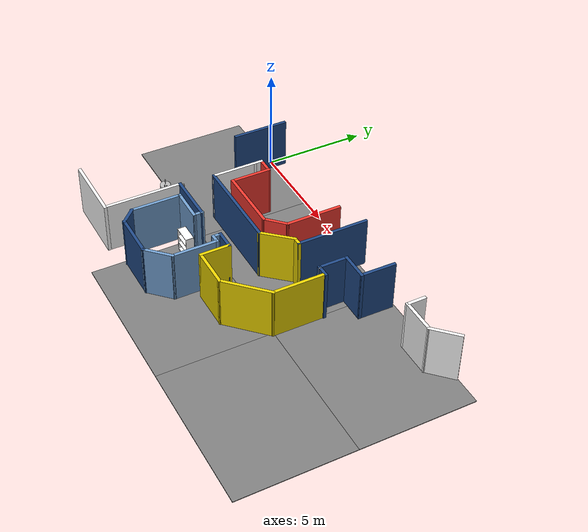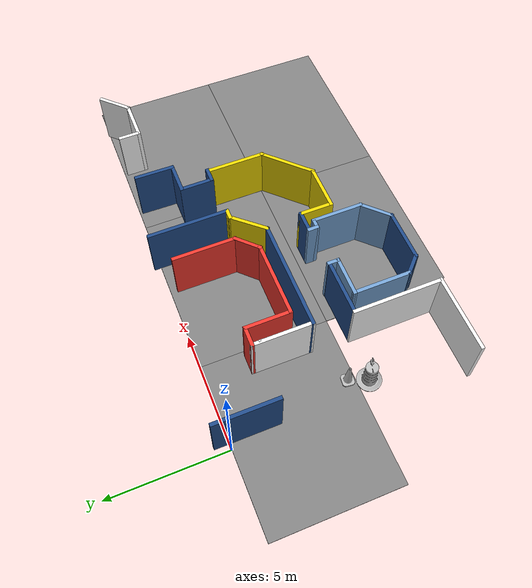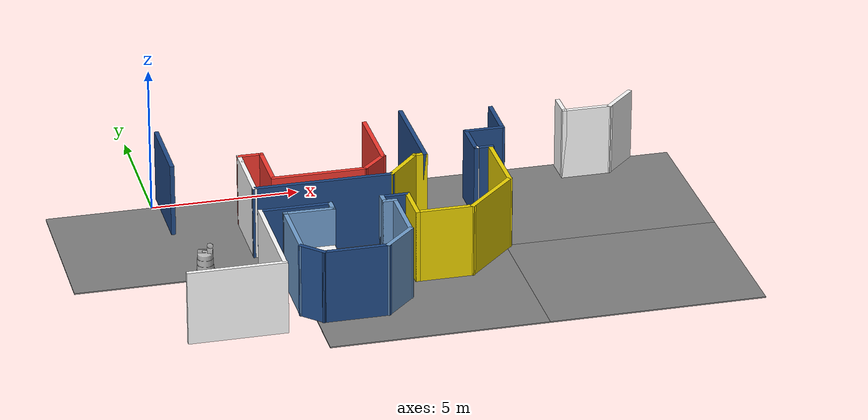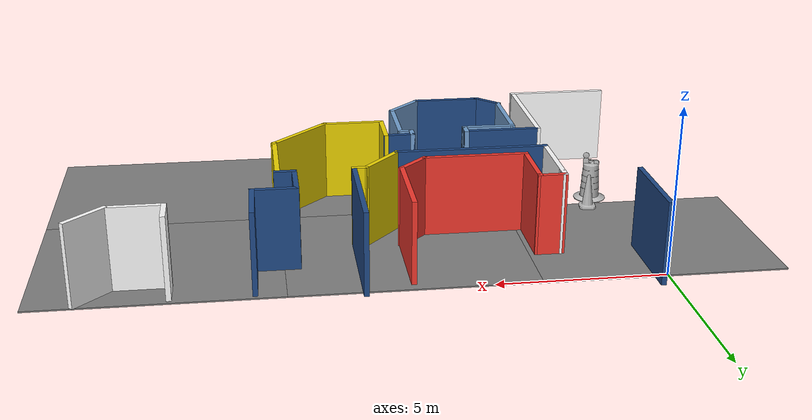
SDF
<sdf version="1.7">
 <world name="default">
  <model name="among_us_world">
   <pose>0.133216 -0.12311 0 0 -0 0</pose>
   <link name="Wall_116">
    <collision name="Wall_116_Collision">
     <geometry><box><size>2.75 0.15 2.5</size></box></geometry>
     <pose>0 0 1.25 0 -0 0</pose>
    </collision>
    <visual name="Wall_116_Visual">
     <pose>0 0 1.25 0 -0 0</pose>
     <geometry><box><size>2.75 0.15 2.5</size></box></geometry>
     <material>
      <ambient>0.12549 0.290196 0.529412 1</ambient>
      <diffuse>0.12549 0.290196 0.529412 1</diffuse>
      <specular>0.08 0.08 0.08 1</specular>
      <emissive>0 0 0 1</emissive>
      <pbr>
       <metal>
        <albedo_map>model://asphalt_plane/materials/textures/tarmac.png</albedo_map>
        <roughness>0.85</roughness>
        <metalness>0</metalness>
       </metal>
      </pbr>
     </material>
     <meta><layer>0</layer></meta>
    </visual>
    <pose>0.19261 -0.637844 0 0 -0 -1.5708</pose>
   </link>
   <link name="Wall_135">
    <collision name="Wall_135_Collision">
     <geometry><box><size>3.5 0.15 2.5</size></box></geometry>
     <pose>0 0 1.25 0 -0 0</pose>
    </collision>
    <visual name="Wall_135_Visual">
     <pose>0 0 1.25 0 -0 0</pose>
     <geometry><box><size>3.5 0.15 2.5</size></box></geometry>
     <material>
      <ambient>0.12549 0.290196 0.529412 1</ambient>
      <diffuse>0.12549 0.290196 0.529412 1</diffuse>
      <specular>0.08 0.08 0.08 1</specular>
      <emissive>0 0 0 1</emissive>
      <pbr>
       <metal>
        <albedo_map>model://asphalt_plane/materials/textures/tarmac.png</albedo_map>
        <roughness>0.85</roughness>
        <metalness>0</metalness>
       </metal>
      </pbr>
     </material>
     <meta><layer>0</layer></meta>
    </visual>
    <pose>8.5057 -1.34265 0 0 -0 -1.5708</pose>
   </link>
   <link name="Wall_136">
    <collision name="Wall_136_Collision">
     <geometry><box><size>0.5 0.15 2.5</size></box></geometry>
     <pose>0 0 1.25 0 -0 0</pose>
    </collision>
    <visual name="Wall_136_Visual">
     <pose>0 0 1.25 0 -0 0</pose>
     <geometry><box><size>0.5 0.15 2.5</size></box></geometry>
     <material>
      <ambient>0.929412 0.831373 0 1</ambient>
      <diffuse>0.929412 0.831373 0 1</diffuse>
      <specular>0.08 0.08 0.08 1</specular>
      <emissive>0 0 0 1</emissive>
      <pbr>
       <metal>
        <albedo_map>model://among_us_world/materials/textures/ceiling_tiled_237_212_0.jpg</albedo_map>
        <roughness>0.85</roughness>
        <metalness>0</metalness>
       </metal>
      </pbr>
     </material>
     <meta><layer>0</layer></meta>
    </visual>
    <pose>8.3307 -3.01765 0 0 -0 3.14159</pose>
   </link>
   <link name="Wall_141">
    <collision name="Wall_141_Collision">
     <geometry><box><size>4.75 0.15 2.5</size></box></geometry>
     <pose>0 0 1.25 0 -0 0</pose>
    </collision>
    <visual name="Wall_141_Visual">
     <pose>0 0 1.25 0 -0 0</pose>
     <geometry><box><size>4.75 0.15 2.5</size></box></geometry>
     <material>
      <ambient>0.12549 0.290196 0.529412 1</ambient>
      <diffuse>0.12549 0.290196 0.529412 1</diffuse>
      <specular>0.08 0.08 0.08 1</specular>
      <emissive>0 0 0 1</emissive>
      <pbr>
       <metal>
        <albedo_map>model://asphalt_plane/materials/textures/tarmac.png</albedo_map>
        <roughness>0.85</roughness>
        <metalness>0</metalness>
       </metal>
      </pbr>
     </material>
     <meta><layer>0</layer></meta>
    </visual>
    <pose>4.78856 -4.21327 0 0 -0 0</pose>
   </link>
   <link name="Wall_143">
    <collision name="Wall_143_Collision">
     <geometry><box><size>1.75259 0.15 2.5</size></box></geometry>
     <pose>0 0 1.25 0 -0 0</pose>
    </collision>
    <visual name="Wall_143_Visual">
     <pose>0 0 1.25 0 -0 0</pose>
     <geometry><box><size>1.75259 0.15 2.5</size></box></geometry>
     <material>
      <ambient>0.929412 0.831373 0 1</ambient>
      <diffuse>0.929412 0.831373 0 1</diffuse>
      <specular>0.08 0.08 0.08 1</specular>
      <emissive>0 0 0 1</emissive>
      <pbr>
       <metal>
        <albedo_map>model://among_us_world/materials/textures/ceiling_tiled_237_212_0.jpg</albedo_map>
        <roughness>0.85</roughness>
        <metalness>0</metalness>
       </metal>
      </pbr>
     </material>
     <meta><layer>0</layer></meta>
    </visual>
    <pose>7.62213 -3.61546 0 0 -0 -2.29947</pose>
   </link>
   <link name="Wall_189">
    <collision name="Wall_189_Collision">
     <geometry><box><size>0.892418 0.15 2.5</size></box></geometry>
     <pose>0 0 1.25 0 -0 0</pose>
    </collision>
    <visual name="Wall_189_Visual">
     <pose>0 0 1.25 0 -0 0</pose>
     <geometry><box><size>0.892418 0.15 2.5</size></box></geometry>
     <material>
      <ambient>0.95 0.22 0.18 1</ambient>
      <diffuse>0.95 0.22 0.18 1</diffuse>
      <specular>0.08 0.08 0.08 1</specular>
      <emissive>0 0 0 1</emissive>
      <pbr>
       <metal>
        <albedo_map>model://among_us_world/materials/textures/ceiling_tiled_164_0_0.jpg</albedo_map>
        <roughness>0.85</roughness>
        <metalness>0</metalness>
       </metal>
      </pbr>
     </material>
     <meta><layer>0</layer></meta>
    </visual>
    <pose>2.86737 -1.75991 0 0 -0 -0.009059</pose>
   </link>
   <link name="Wall_190">
    <collision name="Wall_190_Collision">
     <geometry><box><size>2 0.15 2.5</size></box></geometry>
     <pose>0 0 1.25 0 -0 0</pose>
    </collision>
    <visual name="Wall_190_Visual">
     <pose>0 0 1.25 0 -0 0</pose>
     <geometry><box><size>2 0.15 2.5</size></box></geometry>
     <material>
      <ambient>0.95 0.22 0.18 1</ambient>
      <diffuse>0.95 0.22 0.18 1</diffuse>
      <specular>0.08 0.08 0.08 1</specular>
      <emissive>0 0 0 1</emissive>
      <pbr>
       <metal>
        <albedo_map>model://among_us_world/materials/textures/ceiling_tiled_164_0_0.jpg</albedo_map>
        <roughness>0.85</roughness>
        <metalness>0</metalness>
       </metal>
      </pbr>
     </material>
     <meta><layer>0</layer></meta>
    </visual>
    <pose>3.23856 -2.68827 0 0 -0 -1.5708</pose>
   </link>
   <link name="Wall_191">
    <collision name="Wall_191_Collision">
     <geometry><box><size>3.25 0.15 2.5</size></box></geometry>
     <pose>0 0 1.25 0 -0 0</pose>
    </collision>
    <visual name="Wall_191_Visual">
     <pose>0 0 1.25 0 -0 0</pose>
     <geometry><box><size>3.25 0.15 2.5</size></box></geometry>
     <material>
      <ambient>0.95 0.22 0.18 1</ambient>
      <diffuse>0.95 0.22 0.18 1</diffuse>
      <specular>0.08 0.08 0.08 1</specular>
      <emissive>0 0 0 1</emissive>
      <pbr>
       <metal>
        <albedo_map>model://among_us_world/materials/textures/ceiling_tiled_164_0_0.jpg</albedo_map>
        <roughness>0.85</roughness>
        <metalness>0</metalness>
       </metal>
      </pbr>
     </material>
     <meta><layer>0</layer></meta>
    </visual>
    <pose>4.78856 -3.61327 0 0 -0 0</pose>
   </link>
   <link name="Wall_192">
    <collision name="Wall_192_Collision">
     <geometry><box><size>1.25 0.15 2.5</size></box></geometry>
     <pose>0 0 1.25 0 -0 0</pose>
    </collision>
    <visual name="Wall_192_Visual">
     <pose>0 0 1.25 0 -0 0</pose>
     <geometry><box><size>1.25 0.15 2.5</size></box></geometry>
     <material>
      <ambient>0.95 0.22 0.18 1</ambient>
      <diffuse>0.95 0.22 0.18 1</diffuse>
      <specular>0.08 0.08 0.08 1</specular>
      <emissive>0 0 0 1</emissive>
      <pbr>
       <metal>
        <albedo_map>model://among_us_world/materials/textures/ceiling_tiled_164_0_0.jpg</albedo_map>
        <roughness>0.85</roughness>
        <metalness>0</metalness>
       </metal>
      </pbr>
     </material>
     <meta><layer>0</layer></meta>
    </visual>
    <pose>6.72747 -3.22436 0 0 -0 0.785398</pose>
   </link>
   <link name="Wall_193">
    <collision name="Wall_193_Collision">
     <geometry><box><size>2.75 0.15 2.5</size></box></geometry>
     <pose>0 0 1.25 0 -0 0</pose>
    </collision>
    <visual name="Wall_193_Visual">
     <pose>0 0 1.25 0 -0 0</pose>
     <geometry><box><size>2.75 0.15 2.5</size></box></geometry>
     <material>
      <ambient>0.95 0.22 0.18 1</ambient>
      <diffuse>0.95 0.22 0.18 1</diffuse>
      <specular>0.08 0.08 0.08 1</specular>
      <emissive>0 0 0 1</emissive>
      <pbr>
       <metal>
        <albedo_map>model://among_us_world/materials/textures/ceiling_tiled_164_0_0.jpg</albedo_map>
        <roughness>0.85</roughness>
        <metalness>0</metalness>
       </metal>
      </pbr>
     </material>
     <meta><layer>0</layer></meta>
    </visual>
    <pose>7.11638 -1.53545 0 0 -0 1.5708</pose>
   </link>
   <link name="Wall_200">
    <collision name="Wall_200_Collision">
     <geometry><box><size>3.75 0.15 2.5</size></box></geometry>
     <pose>0 0 1.25 0 -0 0</pose>
    </collision>
    <visual name="Wall_200_Visual">
     <pose>0 0 1.25 0 -0 0</pose>
     <geometry><box><size>3.75 0.15 2.5</size></box></geometry>
     <material>
      <ambient>1 1 1 1</ambient>
      <diffuse>1 1 1 1</diffuse>
      <specular>0.08 0.08 0.08 1</specular>
      <emissive>0 0 0 1</emissive>
      <pbr>
       <metal>
        <albedo_map>model://among_us_world/materials/textures/ceiling_tiled_85_87_83.jpg</albedo_map>
        <roughness>0.85</roughness>
        <metalness>0</metalness>
       </metal>
      </pbr>
     </material>
     <meta><layer>0</layer></meta>
    </visual>
    <pose>2.32919 -7.66138 0 0 -0 1.5708</pose>
   </link>
   <link name="Wall_202">
    <collision name="Wall_202_Collision">
     <geometry><box><size>3.25 0.15 2.5</size></box></geometry>
     <pose>0 0 1.25 0 -0 0</pose>
    </collision>
    <visual name="Wall_202_Visual">
     <pose>0 0 1.25 0 -0 0</pose>
     <geometry><box><size>3.25 0.15 2.5</size></box></geometry>
     <material>
      <ambient>1 1 1 1</ambient>
      <diffuse>1 1 1 1</diffuse>
      <specular>0.08 0.08 0.08 1</specular>
      <emissive>0 0 0 1</emissive>
      <pbr>
       <metal>
        <albedo_map>model://among_us_world/materials/textures/ceiling_tiled_255_255_255.jpg</albedo_map>
        <roughness>0.85</roughness>
        <metalness>0</metalness>
       </metal>
      </pbr>
     </material>
     <meta><layer>0</layer></meta>
    </visual>
    <pose>0.791885 -9.56227 0 0 -0 0</pose>
   </link>
   <link name="Wall_211">
    <collision name="Wall_211_Collision">
     <geometry><box><size>0.15 0.15 2.5</size></box></geometry>
     <pose>0 0 1.25 0 -0 0</pose>
    </collision>
    <visual name="Wall_211_Visual">
     <pose>0 0 1.25 0 -0 0</pose>
     <geometry><box><size>0.15 0.15 2.5</size></box></geometry>
     <material>
      <ambient>1 1 1 1</ambient>
      <diffuse>1 1 1 1</diffuse>
      <specular>0.08 0.08 0.08 1</specular>
      <emissive>0 0 0 1</emissive>
      <pbr><metal><roughness>0.85</roughness><metalness>0</metalness></metal></pbr>
     </material>
     <meta><layer>0</layer></meta>
    </visual>
    <pose>2.50201 -2.11327 0 0 -0 0</pose>
   </link>
   <link name="Wall_217">
    <collision name="Wall_217_Collision">
     <geometry><box><size>2.60674 0.15 2.5</size></box></geometry>
     <pose>0 0 1.25 0 -0 0</pose>
    </collision>
    <visual name="Wall_217_Visual">
     <pose>0 0 1.25 0 -0 0</pose>
     <geometry><box><size>2.60674 0.15 2.5</size></box></geometry>
     <material>
      <ambient>1 1 1 1</ambient>
      <diffuse>1 1 1 1</diffuse>
      <specular>0.08 0.08 0.08 1</specular>
      <emissive>0 0 0 1</emissive>
      <pbr>
       <metal>
        <albedo_map>model://among_us_world/materials/textures/ceiling_tiled_46_52_54.jpg</albedo_map>
        <roughness>0.85</roughness>
        <metalness>0</metalness>
       </metal>
      </pbr>
     </material>
     <meta><layer>0</layer></meta>
    </visual>
    <pose>2.49237 -2.9849 0 0 -0 -1.5739</pose>
   </link>
   <link name="Wall_22">
    <collision name="Wall_22_Collision">
     <geometry><box><size>1.5 0.15 2.5</size></box></geometry>
     <pose>0 0 1.25 0 -0 0</pose>
    </collision>
    <visual name="Wall_22_Visual">
     <pose>0 0 1.25 0 -0 0</pose>
     <geometry><box><size>1.5 0.15 2.5</size></box></geometry>
     <material>
      <ambient>1 1 1 1</ambient>
      <diffuse>1 1 1 1</diffuse>
      <specular>0.08 0.08 0.08 1</specular>
      <emissive>0 0 0 1</emissive>
      <pbr>
       <metal>
        <albedo_map>model://among_us_world/materials/textures/ceiling_tiled_46_52_54.jpg</albedo_map>
        <roughness>0.85</roughness>
        <metalness>0</metalness>
       </metal>
      </pbr>
     </material>
     <meta><layer>0</layer></meta>
    </visual>
    <pose>15.9665 -0.40005 0 0 -0 -2.35619</pose>
   </link>
   <link name="Wall_23">
    <collision name="Wall_23_Collision">
     <geometry><box><size>1.75 0.15 2.5</size></box></geometry>
     <pose>0 0 1.25 0 -0 0</pose>
    </collision>
    <visual name="Wall_23_Visual">
     <pose>0 0 1.25 0 -0 0</pose>
     <geometry><box><size>1.75 0.15 2.5</size></box></geometry>
     <material>
      <ambient>1 1 1 1</ambient>
      <diffuse>1 1 1 1</diffuse>
      <specular>0.08 0.08 0.08 1</specular>
      <emissive>0 0 0 1</emissive>
      <pbr>
       <metal>
        <albedo_map>model://among_us_world/materials/textures/ceiling_tiled_255_255_255.jpg</albedo_map>
        <roughness>0.85</roughness>
        <metalness>0</metalness>
       </metal>
      </pbr>
     </material>
     <meta><layer>0</layer></meta>
    </visual>
    <pose>14.6892 -0.877347 0 0 -0 3.14159</pose>
   </link>
   <link name="Wall_24">
    <collision name="Wall_24_Collision">
     <geometry><box><size>0.963748 0.15 2.5</size></box></geometry>
     <pose>0 0 1.25 0 -0 0</pose>
    </collision>
    <visual name="Wall_24_Visual">
     <pose>0 0 1.25 0 -0 0</pose>
     <geometry><box><size>0.963748 0.15 2.5</size></box></geometry>
     <material>
      <ambient>1 1 1 1</ambient>
      <diffuse>1 1 1 1</diffuse>
      <specular>0.08 0.08 0.08 1</specular>
      <emissive>0 0 0 1</emissive>
      <pbr>
       <metal>
        <albedo_map>model://among_us_world/materials/textures/ceiling_tiled_46_52_54.jpg</albedo_map>
        <roughness>0.85</roughness>
        <metalness>0</metalness>
       </metal>
      </pbr>
     </material>
     <meta><layer>0</layer></meta>
    </visual>
    <pose>13.8892 -0.470473 0 0 -0 1.5708</pose>
   </link>
   <link name="Wall_26">
    <collision name="Wall_26_Collision">
     <geometry><box><size>1.73416 0.15 2.5</size></box></geometry>
     <pose>0 0 1.25 0 -0 0</pose>
    </collision>
    <visual name="Wall_26_Visual">
     <pose>0 0 1.25 0 -0 0</pose>
     <geometry><box><size>1.73416 0.15 2.5</size></box></geometry>
     <material>
      <ambient>0.12549 0.290196 0.529412 1</ambient>
      <diffuse>0.12549 0.290196 0.529412 1</diffuse>
      <specular>0.08 0.08 0.08 1</specular>
      <emissive>0 0 0 1</emissive>
      <pbr>
       <metal>
        <albedo_map>model://asphalt_plane/materials/textures/tarmac.png</albedo_map>
        <roughness>0.85</roughness>
        <metalness>0</metalness>
       </metal>
      </pbr>
     </material>
     <meta><layer>0</layer></meta>
    </visual>
    <pose>11.5256 -0.855562 0 0 -0 -1.58788</pose>
   </link>
   <link name="Wall_27">
    <collision name="Wall_27_Collision">
     <geometry><box><size>1.40477 0.15 2.5</size></box></geometry>
     <pose>0 0 1.25 0 -0 0</pose>
    </collision>
    <visual name="Wall_27_Visual">
     <pose>0 0 1.25 0 -0 0</pose>
     <geometry><box><size>1.40477 0.15 2.5</size></box></geometry>
     <material>
      <ambient>0.12549 0.290196 0.529412 1</ambient>
      <diffuse>0.12549 0.290196 0.529412 1</diffuse>
      <specular>0.08 0.08 0.08 1</specular>
      <emissive>0 0 0 1</emissive>
      <pbr>
       <metal>
        <albedo_map>model://asphalt_plane/materials/textures/tarmac.png</albedo_map>
        <roughness>0.85</roughness>
        <metalness>0</metalness>
       </metal>
      </pbr>
     </material>
     <meta><layer>0</layer></meta>
    </visual>
    <pose>10.8914 -1.64752 0 0 -0 3.14159</pose>
   </link>
   <link name="Wall_66">
    <collision name="Wall_66_Collision">
     <geometry><box><size>2.44341 0.15 2.5</size></box></geometry>
     <pose>0 0 1.25 0 -0 0</pose>
    </collision>
    <visual name="Wall_66_Visual">
     <pose>0 0 1.25 0 -0 0</pose>
     <geometry><box><size>2.44341 0.15 2.5</size></box></geometry>
     <material>
      <ambient>0.12549 0.290196 0.529412 1</ambient>
      <diffuse>0.12549 0.290196 0.529412 1</diffuse>
      <specular>0.08 0.08 0.08 1</specular>
      <emissive>0 0 0 1</emissive>
      <pbr>
       <metal>
        <albedo_map>model://asphalt_plane/materials/textures/tarmac.png</albedo_map>
        <roughness>0.85</roughness>
        <metalness>0</metalness>
       </metal>
      </pbr>
     </material>
     <meta><layer>0</layer></meta>
    </visual>
    <pose>3.49624 -5.86016 0 0 -0 0.001069</pose>
   </link>
   <link name="Wall_68">
    <collision name="Wall_68_Collision">
     <geometry><box><size>0.526231 0.15 2.5</size></box></geometry>
     <pose>0 0 1.25 0 -0 0</pose>
    </collision>
    <visual name="Wall_68_Visual">
     <pose>0 0 1.25 0 -0 0</pose>
     <geometry><box><size>0.526231 0.15 2.5</size></box></geometry>
     <material>
      <ambient>0.447059 0.623529 0.811765 1</ambient>
      <diffuse>0.447059 0.623529 0.811765 1</diffuse>
      <specular>0.08 0.08 0.08 1</specular>
      <emissive>0 0 0 1</emissive>
      <pbr>
       <metal>
        <albedo_map>model://among_us_world/materials/textures/ceiling_tiled_114_159_207.jpg</albedo_map>
        <roughness>0.85</roughness>
        <metalness>0</metalness>
       </metal>
      </pbr>
     </material>
     <meta><layer>0</layer></meta>
    </visual>
    <pose>4.64294 -6.02916 0 0 -0 -1.5708</pose>
   </link>
   <link name="Wall_69">
    <collision name="Wall_69_Collision">
     <geometry><box><size>1.71385 0.15 2.5</size></box></geometry>
     <pose>0 0 1.25 0 -0 0</pose>
    </collision>
    <visual name="Wall_69_Visual">
     <pose>0 0 1.25 0 -0 0</pose>
     <geometry><box><size>1.71385 0.15 2.5</size></box></geometry>
     <material>
      <ambient>0.447059 0.623529 0.811765 1</ambient>
      <diffuse>0.447059 0.623529 0.811765 1</diffuse>
      <specular>0.08 0.08 0.08 1</specular>
      <emissive>0 0 0 1</emissive>
      <pbr>
       <metal>
        <albedo_map>model://among_us_world/materials/textures/ceiling_tiled_114_159_207.jpg</albedo_map>
        <roughness>0.85</roughness>
        <metalness>0</metalness>
       </metal>
      </pbr>
     </material>
     <meta><layer>0</layer></meta>
    </visual>
    <pose>3.86107 -6.22622 0 0 -0 3.13015</pose>
   </link>
   <link name="Wall_70">
    <collision name="Wall_70_Collision">
     <geometry><box><size>2.5 0.15 2.5</size></box></geometry>
     <pose>0 0 1.25 0 -0 0</pose>
    </collision>
    <visual name="Wall_70_Visual">
     <pose>0 0 1.25 0 -0 0</pose>
     <geometry><box><size>2.5 0.15 2.5</size></box></geometry>
     <material>
      <ambient>0.447059 0.623529 0.811765 1</ambient>
      <diffuse>0.447059 0.623529 0.811765 1</diffuse>
      <specular>0.08 0.08 0.08 1</specular>
      <emissive>0 0 0 1</emissive>
      <pbr>
       <metal>
        <albedo_map>model://among_us_world/materials/textures/ceiling_tiled_114_159_207.jpg</albedo_map>
        <roughness>0.85</roughness>
        <metalness>0</metalness>
       </metal>
      </pbr>
     </material>
     <meta><layer>0</layer></meta>
    </visual>
    <pose>3.07919 -7.39227 0 0 -0 -1.5708</pose>
   </link>
   <link name="Wall_71">
    <collision name="Wall_71_Collision">
     <geometry><box><size>1 0.15 2.5</size></box></geometry>
     <pose>0 0 1.25 0 -0 0</pose>
    </collision>
    <visual name="Wall_71_Visual">
     <pose>0 0 1.25 0 -0 0</pose>
     <geometry><box><size>1 0.15 2.5</size></box></geometry>
     <material>
      <ambient>0.12549 0.290196 0.529412 1</ambient>
      <diffuse>0.12549 0.290196 0.529412 1</diffuse>
      <specular>0.08 0.08 0.08 1</specular>
      <emissive>0 0 0 1</emissive>
      <pbr>
       <metal>
        <albedo_map>model://among_us_world/materials/textures/ceiling_tiled_32_74_135.jpg</albedo_map>
        <roughness>0.85</roughness>
        <metalness>0</metalness>
       </metal>
      </pbr>
     </material>
     <meta><layer>0</layer></meta>
    </visual>
    <pose>3.37971 -8.86779 0 0 -0 -0.785398</pose>
   </link>
   <link name="Wall_72">
    <collision name="Wall_72_Collision">
     <geometry><box><size>2.25 0.15 2.5</size></box></geometry>
     <pose>0 0 1.25 0 -0 0</pose>
    </collision>
    <visual name="Wall_72_Visual">
     <pose>0 0 1.25 0 -0 0</pose>
     <geometry><box><size>2.25 0.15 2.5</size></box></geometry>
     <material>
      <ambient>0.12549 0.290196 0.529412 1</ambient>
      <diffuse>0.12549 0.290196 0.529412 1</diffuse>
      <specular>0.08 0.08 0.08 1</specular>
      <emissive>0 0 0 1</emissive>
      <pbr>
       <metal>
        <albedo_map>model://among_us_world/materials/textures/ceiling_tiled_32_74_135.jpg</albedo_map>
        <roughness>0.85</roughness>
        <metalness>0</metalness>
       </metal>
      </pbr>
     </material>
     <meta><layer>0</layer></meta>
    </visual>
    <pose>4.73024 -9.16831 0 0 -0 0</pose>
   </link>
   <link name="Wall_73">
    <collision name="Wall_73_Collision">
     <geometry><box><size>1.5 0.15 2.5</size></box></geometry>
     <pose>0 0 1.25 0 -0 0</pose>
    </collision>
    <visual name="Wall_73_Visual">
     <pose>0 0 1.25 0 -0 0</pose>
     <geometry><box><size>1.5 0.15 2.5</size></box></geometry>
     <material>
      <ambient>0.447059 0.623529 0.811765 1</ambient>
      <diffuse>0.447059 0.623529 0.811765 1</diffuse>
      <specular>0.08 0.08 0.08 1</specular>
      <emissive>0 0 0 1</emissive>
      <pbr>
       <metal>
        <albedo_map>model://among_us_world/materials/textures/ceiling_tiled_114_159_207.jpg</albedo_map>
        <roughness>0.85</roughness>
        <metalness>0</metalness>
       </metal>
      </pbr>
     </material>
     <meta><layer>0</layer></meta>
    </visual>
    <pose>6.25753 -8.69102 0 0 -0 0.785398</pose>
   </link>
   <link name="Wall_76">
    <collision name="Wall_76_Collision">
     <geometry><box><size>2.25 0.15 2.5</size></box></geometry>
     <pose>0 0 1.25 0 -0 0</pose>
    </collision>
    <visual name="Wall_76_Visual">
     <pose>0 0 1.25 0 -0 0</pose>
     <geometry><box><size>2.25 0.15 2.5</size></box></geometry>
     <material>
      <ambient>0.447059 0.623529 0.811765 1</ambient>
      <diffuse>0.447059 0.623529 0.811765 1</diffuse>
      <specular>0.08 0.08 0.08 1</specular>
      <emissive>0 0 0 1</emissive>
      <pbr>
       <metal>
        <albedo_map>model://among_us_world/materials/textures/ceiling_tiled_114_159_207.jpg</albedo_map>
        <roughness>0.85</roughness>
        <metalness>0</metalness>
       </metal>
      </pbr>
     </material>
     <meta><layer>0</layer></meta>
    </visual>
    <pose>6.73483 -7.16372 0 0 -0 1.5708</pose>
   </link>
   <link name="Wall_77">
    <collision name="Wall_77_Collision">
     <geometry><box><size>0.5 0.15 2.5</size></box></geometry>
     <pose>0 0 1.25 0 -0 0</pose>
    </collision>
    <visual name="Wall_77_Visual">
     <pose>0 0 1.25 0 -0 0</pose>
     <geometry><box><size>0.5 0.15 2.5</size></box></geometry>
     <material>
      <ambient>0.447059 0.623529 0.811765 1</ambient>
      <diffuse>0.447059 0.623529 0.811765 1</diffuse>
      <specular>0.08 0.08 0.08 1</specular>
      <emissive>0 0 0 1</emissive>
      <pbr>
       <metal>
        <albedo_map>model://among_us_world/materials/textures/ceiling_tiled_114_159_207.jpg</albedo_map>
        <roughness>0.85</roughness>
        <metalness>0</metalness>
       </metal>
      </pbr>
     </material>
     <meta><layer>0</layer></meta>
    </visual>
    <pose>6.55983 -6.11372 0 0 -0 3.14159</pose>
   </link>
   <link name="Wall_78">
    <collision name="Wall_78_Collision">
     <geometry><box><size>0.5 0.15 2.5</size></box></geometry>
     <pose>0 0 1.25 0 -0 0</pose>
    </collision>
    <visual name="Wall_78_Visual">
     <pose>0 0 1.25 0 -0 0</pose>
     <geometry><box><size>0.5 0.15 2.5</size></box></geometry>
     <material>
      <ambient>0.447059 0.623529 0.811765 1</ambient>
      <diffuse>0.447059 0.623529 0.811765 1</diffuse>
      <specular>0.08 0.08 0.08 1</specular>
      <emissive>0 0 0 1</emissive>
      <pbr>
       <metal>
        <albedo_map>model://among_us_world/materials/textures/ceiling_tiled_114_159_207.jpg</albedo_map>
        <roughness>0.85</roughness>
        <metalness>0</metalness>
       </metal>
      </pbr>
     </material>
     <meta><layer>0</layer></meta>
    </visual>
    <pose>6.38483 -5.93872 0 0 -0 1.5708</pose>
   </link>
   <link name="Wall_79">
    <collision name="Wall_79_Collision">
     <geometry><box><size>1 0.15 2.5</size></box></geometry>
     <pose>0 0 1.25 0 -0 0</pose>
    </collision>
    <visual name="Wall_79_Visual">
     <pose>0 0 1.25 0 -0 0</pose>
     <geometry><box><size>1 0.15 2.5</size></box></geometry>
     <material>
      <ambient>0.12549 0.290196 0.529412 1</ambient>
      <diffuse>0.12549 0.290196 0.529412 1</diffuse>
      <specular>0.08 0.08 0.08 1</specular>
      <emissive>0 0 0 1</emissive>
      <pbr>
       <metal>
        <albedo_map>model://asphalt_plane/materials/textures/tarmac.png</albedo_map>
        <roughness>0.85</roughness>
        <metalness>0</metalness>
       </metal>
      </pbr>
     </material>
     <meta><layer>0</layer></meta>
    </visual>
    <pose>6.80983 -5.76372 0 0 -0 0</pose>
   </link>
   <link name="Wall_80">
    <collision name="Wall_80_Collision">
     <geometry><box><size>1.5 0.15 2.5</size></box></geometry>
     <pose>0 0 1.25 0 -0 0</pose>
    </collision>
    <visual name="Wall_80_Visual">
     <pose>0 0 1.25 0 -0 0</pose>
     <geometry><box><size>1.5 0.15 2.5</size></box></geometry>
     <material>
      <ambient>0.929412 0.831373 0 1</ambient>
      <diffuse>0.929412 0.831373 0 1</diffuse>
      <specular>0.08 0.08 0.08 1</specular>
      <emissive>0 0 0 1</emissive>
      <pbr>
       <metal>
        <albedo_map>model://among_us_world/materials/textures/ceiling_tiled_237_212_0.jpg</albedo_map>
        <roughness>0.85</roughness>
        <metalness>0</metalness>
       </metal>
      </pbr>
     </material>
     <meta><layer>0</layer></meta>
    </visual>
    <pose>7.23483 -6.43872 0 0 -0 -1.5708</pose>
   </link>
   <link name="Wall_82">
    <collision name="Wall_82_Collision">
     <geometry><box><size>2 0.15 2.5</size></box></geometry>
     <pose>0 0 1.25 0 -0 0</pose>
    </collision>
    <visual name="Wall_82_Visual">
     <pose>0 0 1.25 0 -0 0</pose>
     <geometry><box><size>2 0.15 2.5</size></box></geometry>
     <material>
      <ambient>0.929412 0.831373 0 1</ambient>
      <diffuse>0.929412 0.831373 0 1</diffuse>
      <specular>0.08 0.08 0.08 1</specular>
      <emissive>0 0 0 1</emissive>
      <pbr>
       <metal>
        <albedo_map>model://among_us_world/materials/textures/ceiling_tiled_237_212_0.jpg</albedo_map>
        <roughness>0.85</roughness>
        <metalness>0</metalness>
       </metal>
      </pbr>
     </material>
     <meta><layer>0</layer></meta>
    </visual>
    <pose>8.15983 -7.11372 0 0 -0 0</pose>
   </link>
   <link name="Wall_83">
    <collision name="Wall_83_Collision">
     <geometry><box><size>2.5 0.15 2.5</size></box></geometry>
     <pose>0 0 1.25 0 -0 0</pose>
    </collision>
    <visual name="Wall_83_Visual">
     <pose>0 0 1.25 0 -0 0</pose>
     <geometry><box><size>2.5 0.15 2.5</size></box></geometry>
     <material>
      <ambient>0.929412 0.831373 0 1</ambient>
      <diffuse>0.929412 0.831373 0 1</diffuse>
      <specular>0.08 0.08 0.08 1</specular>
      <emissive>0 0 0 1</emissive>
      <pbr>
       <metal>
        <albedo_map>model://among_us_world/materials/textures/ceiling_tiled_237_212_0.jpg</albedo_map>
        <roughness>0.85</roughness>
        <metalness>0</metalness>
       </metal>
      </pbr>
     </material>
     <meta><layer>0</layer></meta>
    </visual>
    <pose>9.91568 -6.28287 0 0 -0 0.785398</pose>
   </link>
   <link name="Wall_85">
    <collision name="Wall_85_Collision">
     <geometry><box><size>2.5 0.15 2.5</size></box></geometry>
     <pose>0 0 1.25 0 -0 0</pose>
    </collision>
    <visual name="Wall_85_Visual">
     <pose>0 0 1.25 0 -0 0</pose>
     <geometry><box><size>2.5 0.15 2.5</size></box></geometry>
     <material>
      <ambient>0.929412 0.831373 0 1</ambient>
      <diffuse>0.929412 0.831373 0 1</diffuse>
      <specular>0.08 0.08 0.08 1</specular>
      <emissive>0 0 0 1</emissive>
      <pbr>
       <metal>
        <albedo_map>model://among_us_world/materials/textures/ceiling_tiled_237_212_0.jpg</albedo_map>
        <roughness>0.85</roughness>
        <metalness>0</metalness>
       </metal>
      </pbr>
     </material>
     <meta><layer>0</layer></meta>
    </visual>
    <pose>10.7465 -4.27702 0 0 -0 1.5708</pose>
   </link>
   <link name="Wall_89">
    <collision name="Wall_89_Collision">
     <geometry><box><size>1.47984 0.15 2.5</size></box></geometry>
     <pose>0 0 1.25 0 -0 0</pose>
    </collision>
    <visual name="Wall_89_Visual">
     <pose>0 0 1.25 0 -0 0</pose>
     <geometry><box><size>1.47984 0.15 2.5</size></box></geometry>
     <material>
      <ambient>0.12549 0.290196 0.529412 1</ambient>
      <diffuse>0.12549 0.290196 0.529412 1</diffuse>
      <specular>0.08 0.08 0.08 1</specular>
      <emissive>0 0 0 1</emissive>
      <pbr>
       <metal>
        <albedo_map>model://asphalt_plane/materials/textures/tarmac.png</albedo_map>
        <roughness>0.85</roughness>
        <metalness>0</metalness>
       </metal>
      </pbr>
     </material>
     <meta><layer>0</layer></meta>
    </visual>
    <pose>10.2573 -2.31244 0 0 -0 -1.5708</pose>
   </link>
   <link name="Wall_90">
    <collision name="Wall_90_Collision">
     <geometry><box><size>0.15 0.15 2.5</size></box></geometry>
     <pose>0 0 1.25 0 -0 0</pose>
    </collision>
    <visual name="Wall_90_Visual">
     <pose>0 0 1.25 0 -0 0</pose>
     <geometry><box><size>0.15 0.15 2.5</size></box></geometry>
     <material>
      <ambient>1 1 1 1</ambient>
      <diffuse>1 1 1 1</diffuse>
      <specular>0.08 0.08 0.08 1</specular>
      <emissive>0 0 0 1</emissive>
      <pbr><metal><roughness>0.85</roughness><metalness>0</metalness></metal></pbr>
     </material>
     <meta><layer>0</layer></meta>
    </visual>
    <pose>10.2844 -2.97735 0 0 -0 0</pose>
   </link>
   <link name="Wall_93">
    <collision name="Wall_93_Collision">
     <geometry><box><size>0.654769 0.15 2.5</size></box></geometry>
     <pose>0 0 1.25 0 -0 0</pose>
    </collision>
    <visual name="Wall_93_Visual">
     <pose>0 0 1.25 0 -0 0</pose>
     <geometry><box><size>0.654769 0.15 2.5</size></box></geometry>
     <material>
      <ambient>0.12549 0.290196 0.529412 1</ambient>
      <diffuse>0.12549 0.290196 0.529412 1</diffuse>
      <specular>0.08 0.08 0.08 1</specular>
      <emissive>0 0 0 1</emissive>
      <pbr>
       <metal>
        <albedo_map>model://asphalt_plane/materials/textures/tarmac.png</albedo_map>
        <roughness>0.85</roughness>
        <metalness>0</metalness>
       </metal>
      </pbr>
     </material>
     <meta><layer>0</layer></meta>
    </visual>
    <pose>10.5368 -2.97735 0 0 -0 0</pose>
   </link>
   <static>1</static>
  </model>
  <model name="Construction Barrel_clone">
   <static>0</static>
   <link name="link">
    <inertial>
     <pose>0 0 0.4 0 -0 0</pose>
     <mass>8</mass>
     <inertia><ixx>0.64</ixx><iyy>0.64</iyy><izz>0.64</izz><ixy>0</ixy><ixz>0</ixz><iyz>0</iyz></inertia>
    </inertial>
    <collision name="collision">
     <pose>0 0 0.32 0 0 0</pose>
     <geometry><cylinder><radius>0.16</radius><length>0.64</length></cylinder></geometry>
     <surface><friction><ode><mu>1.0</mu><mu2>1.0</mu2></ode></friction></surface>
     <max_contacts>20</max_contacts>
    </collision>
    <visual name="visual">
     <geometry><mesh><uri>model://construction_barrel/meshes/construction_barrel.dae</uri></mesh></geometry>
    </visual>
   </link>
   <pose>0.623823 -5.9827 0.009999 3e-06 -8e-06 -0.35048</pose>
  </model>
  <model name="bookshelf">
   <static>1</static>
   <link name="link">
    <inertial><mass>1</mass></inertial>
    <collision name="back">
     <pose>0 0.005 0.6 0 -0 0</pose>
     <geometry><box><size>0.9 0.01 1.2</size></box></geometry>
    </collision>
    <visual name="visual1">
     <pose>0 0.005 0.6 0 -0 0</pose>
     <geometry><box><size>0.9 0.01 1.2</size></box></geometry>
     <material>
      <ambient>1 1 1 1</ambient>
      <diffuse>1 1 1 1</diffuse>
      <specular>0.08 0.08 0.08 1</specular>
      <emissive>0 0 0 1</emissive>
      <pbr>
       <metal>
        <albedo_map>model://among_us_world/materials/textures/legacy_wood.jpg</albedo_map>
        <roughness>0.62</roughness>
        <metalness>0</metalness>
       </metal>
      </pbr>
     </material>
    </visual>
    <collision name="left_side">
     <pose>0.45 -0.195 0.6 0 -0 0</pose>
     <geometry><box><size>0.02 0.4 1.2</size></box></geometry>
    </collision>
    <visual name="visual2">
     <pose>0.45 -0.195 0.6 0 -0 0</pose>
     <geometry><box><size>0.02 0.4 1.2</size></box></geometry>
     <material>
      <ambient>1 1 1 1</ambient>
      <diffuse>1 1 1 1</diffuse>
      <specular>0.08 0.08 0.08 1</specular>
      <emissive>0 0 0 1</emissive>
      <pbr>
       <metal>
        <albedo_map>model://among_us_world/materials/textures/legacy_wood.jpg</albedo_map>
        <roughness>0.62</roughness>
        <metalness>0</metalness>
       </metal>
      </pbr>
     </material>
    </visual>
    <collision name="right_side">
     <pose>-0.45 -0.195 0.6 0 -0 0</pose>
     <geometry><box><size>0.02 0.4 1.2</size></box></geometry>
    </collision>
    <visual name="visual3">
     <pose>-0.45 -0.195 0.6 0 -0 0</pose>
     <geometry><box><size>0.02 0.4 1.2</size></box></geometry>
     <material>
      <ambient>1 1 1 1</ambient>
      <diffuse>1 1 1 1</diffuse>
      <specular>0.08 0.08 0.08 1</specular>
      <emissive>0 0 0 1</emissive>
      <pbr>
       <metal>
        <albedo_map>model://among_us_world/materials/textures/legacy_wood.jpg</albedo_map>
        <roughness>0.62</roughness>
        <metalness>0</metalness>
       </metal>
      </pbr>
     </material>
    </visual>
    <collision name="bottom">
     <pose>0 -0.195 0.03 0 -0 0</pose>
     <geometry><box><size>0.88 0.4 0.06</size></box></geometry>
    </collision>
    <visual name="visual4">
     <pose>0 -0.195 0.03 0 -0 0</pose>
     <geometry><box><size>0.88 0.4 0.06</size></box></geometry>
     <material>
      <ambient>1 1 1 1</ambient>
      <diffuse>1 1 1 1</diffuse>
      <specular>0.08 0.08 0.08 1</specular>
      <emissive>0 0 0 1</emissive>
      <pbr>
       <metal>
        <albedo_map>model://among_us_world/materials/textures/legacy_wood.jpg</albedo_map>
        <roughness>0.62</roughness>
        <metalness>0</metalness>
       </metal>
      </pbr>
     </material>
    </visual>
    <collision name="top">
     <pose>0 -0.195 1.19 0 -0 0</pose>
     <geometry><box><size>0.88 0.4 0.02</size></box></geometry>
    </collision>
    <visual name="visual5">
     <pose>0 -0.195 1.19 0 -0 0</pose>
     <geometry><box><size>0.88 0.4 0.02</size></box></geometry>
     <material>
      <ambient>1 1 1 1</ambient>
      <diffuse>1 1 1 1</diffuse>
      <specular>0.08 0.08 0.08 1</specular>
      <emissive>0 0 0 1</emissive>
      <pbr>
       <metal>
        <albedo_map>model://among_us_world/materials/textures/legacy_wood.jpg</albedo_map>
        <roughness>0.62</roughness>
        <metalness>0</metalness>
       </metal>
      </pbr>
     </material>
    </visual>
    <collision name="low_shelf">
     <pose>0 -0.195 0.43 0 -0 0</pose>
     <geometry><box><size>0.88 0.4 0.02</size></box></geometry>
    </collision>
    <visual name="visual6">
     <pose>0 -0.195 0.43 0 -0 0</pose>
     <geometry><box><size>0.88 0.4 0.02</size></box></geometry>
     <material>
      <ambient>1 1 1 1</ambient>
      <diffuse>1 1 1 1</diffuse>
      <specular>0.08 0.08 0.08 1</specular>
      <emissive>0 0 0 1</emissive>
      <pbr>
       <metal>
        <albedo_map>model://among_us_world/materials/textures/legacy_wood.jpg</albedo_map>
        <roughness>0.62</roughness>
        <metalness>0</metalness>
       </metal>
      </pbr>
     </material>
    </visual>
    <collision name="high_shelf">
     <pose>0 -0.195 0.8 0 -0 0</pose>
     <geometry><box><size>0.88 0.4 0.02</size></box></geometry>
    </collision>
    <visual name="visual7">
     <pose>0 -0.195 0.8 0 -0 0</pose>
     <geometry><box><size>0.88 0.4 0.02</size></box></geometry>
     <material>
      <ambient>1 1 1 1</ambient>
      <diffuse>1 1 1 1</diffuse>
      <specular>0.08 0.08 0.08 1</specular>
      <emissive>0 0 0 1</emissive>
      <pbr>
       <metal>
        <albedo_map>model://among_us_world/materials/textures/legacy_wood.jpg</albedo_map>
        <roughness>0.62</roughness>
        <metalness>0</metalness>
       </metal>
      </pbr>
     </material>
    </visual>
   </link>
   <pose>4.37057 -6.44632 0 0 -0 0</pose>
  </model>
  <model name="asphalt_tile_00_03">
   <static>1</static>
   <pose>7.200 -8.250 -0.020 0 -0 0</pose>
   <link name="link">
    <collision name="collision"><geometry><box><size>7.200 5.500 0.040</size></box></geometry></collision>
    <visual name="visual">
     <cast_shadows>0</cast_shadows>
     <geometry><box><size>7.200 5.500 0.040</size></box></geometry>
     <material>
      <ambient>0.5 0.5 0.5 1</ambient>
      <diffuse>0.5 0.5 0.5 1</diffuse>
      <specular>0.2 0.2 0.2 1</specular>
      <emissive>0 0 0 1</emissive>
      <pbr>
       <metal>
        <albedo_map>model://asphalt_plane/materials/textures/tarmac.png</albedo_map>
        <roughness>0.85</roughness>
        <metalness>0</metalness>
       </metal>
      </pbr>
     </material>
    </visual>
   </link>
  </model>
  <model name="asphalt_tile_00_04">
   <static>1</static>
   <pose>14.400 -8.250 -0.020 0 -0 0</pose>
   <link name="link">
    <collision name="collision"><geometry><box><size>7.200 5.500 0.040</size></box></geometry></collision>
    <visual name="visual">
     <cast_shadows>0</cast_shadows>
     <geometry><box><size>7.200 5.500 0.040</size></box></geometry>
     <material>
      <ambient>0.5 0.5 0.5 1</ambient>
      <diffuse>0.5 0.5 0.5 1</diffuse>
      <specular>0.2 0.2 0.2 1</specular>
      <emissive>0 0 0 1</emissive>
      <pbr>
       <metal>
        <albedo_map>model://asphalt_plane/materials/textures/tarmac.png</albedo_map>
        <roughness>0.85</roughness>
        <metalness>0</metalness>
       </metal>
      </pbr>
     </material>
    </visual>
   </link>
  </model>
  <model name="asphalt_tile_01_02">
   <static>1</static>
   <pose>0.000 -2.750 -0.020 0 -0 0</pose>
   <link name="link">
    <collision name="collision"><geometry><box><size>7.200 5.500 0.040</size></box></geometry></collision>
    <visual name="visual">
     <cast_shadows>0</cast_shadows>
     <geometry><box><size>7.200 5.500 0.040</size></box></geometry>
     <material>
      <ambient>0.5 0.5 0.5 1</ambient>
      <diffuse>0.5 0.5 0.5 1</diffuse>
      <specular>0.2 0.2 0.2 1</specular>
      <emissive>0 0 0 1</emissive>
      <pbr>
       <metal>
        <albedo_map>model://asphalt_plane/materials/textures/tarmac.png</albedo_map>
        <roughness>0.85</roughness>
        <metalness>0</metalness>
       </metal>
      </pbr>
     </material>
    </visual>
   </link>
  </model>
  <model name="asphalt_tile_01_03">
   <static>1</static>
   <pose>7.200 -2.750 -0.020 0 -0 0</pose>
   <link name="link">
    <collision name="collision"><geometry><box><size>7.200 5.500 0.040</size></box></geometry></collision>
    <visual name="visual">
     <cast_shadows>0</cast_shadows>
     <geometry><box><size>7.200 5.500 0.040</size></box></geometry>
     <material>
      <ambient>0.5 0.5 0.5 1</ambient>
      <diffuse>0.5 0.5 0.5 1</diffuse>
      <specular>0.2 0.2 0.2 1</specular>
      <emissive>0 0 0 1</emissive>
      <pbr>
       <metal>
        <albedo_map>model://asphalt_plane/materials/textures/tarmac.png</albedo_map>
        <roughness>0.85</roughness>
        <metalness>0</metalness>
       </metal>
      </pbr>
     </material>
    </visual>
   </link>
  </model>
  <model name="asphalt_tile_01_04">
   <static>1</static>
   <pose>14.400 -2.750 -0.020 0 -0 0</pose>
   <link name="link">
    <collision name="collision"><geometry><box><size>7.200 5.500 0.040</size></box></geometry></collision>
    <visual name="visual">
     <cast_shadows>0</cast_shadows>
     <geometry><box><size>7.200 5.500 0.040</size></box></geometry>
     <material>
      <ambient>0.5 0.5 0.5 1</ambient>
      <diffuse>0.5 0.5 0.5 1</diffuse>
      <specular>0.2 0.2 0.2 1</specular>
      <emissive>0 0 0 1</emissive>
      <pbr>
       <metal>
        <albedo_map>model://asphalt_plane/materials/textures/tarmac.png</albedo_map>
        <roughness>0.85</roughness>
        <metalness>0</metalness>
       </metal>
      </pbr>
     </material>
    </visual>
   </link>
  </model>
  <model name="Construction Cone_clone">
   <static>0</static>
   <link name="link">
    <collision name="collision">
     <pose>0 0 0.17 0 0 0</pose>
     <geometry><cylinder><radius>0.11</radius><length>0.34</length></cylinder></geometry>
     <surface><friction><ode><mu>1.0</mu><mu2>1.0</mu2></ode></friction></surface>
     <max_contacts>20</max_contacts>
    </collision>
    <visual name="visual">
     <geometry>
      <mesh><scale>10 10 10</scale><uri>model://construction_cone/meshes/construction_cone.dae</uri></mesh>
     </geometry>
    </visual>
    <inertial>
     <inertia><ixx>0.08</ixx><ixy>0</ixy><ixz>0</ixz><iyy>0.08</iyy><iyz>0</iyz><izz>0.08</izz></inertia>
     <mass>1</mass>
    </inertial>
   </link>
   <pose>0.909638 -5.19132 0.01 -0 -0 -1.69187</pose>
  </model>
 </world>
</sdf>
